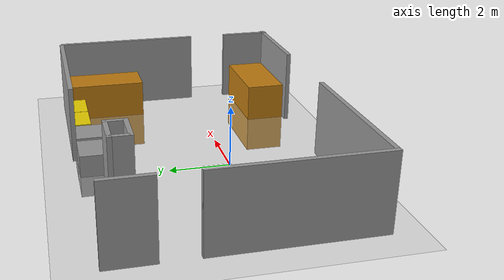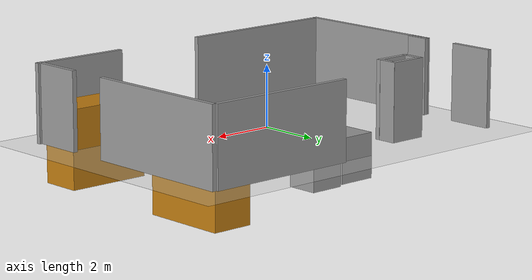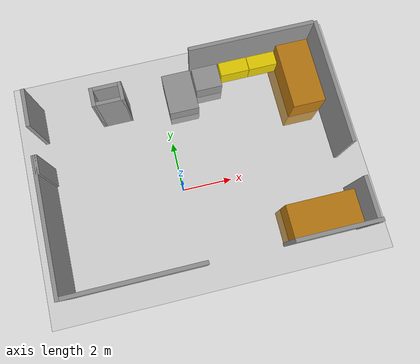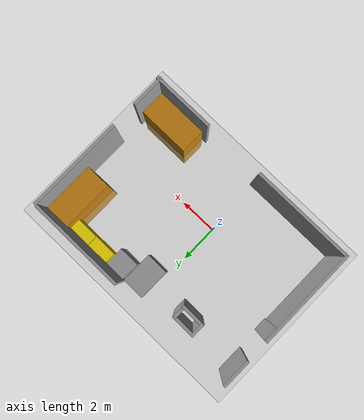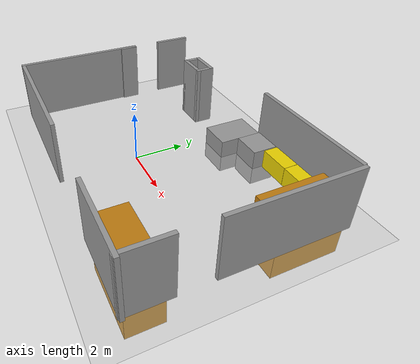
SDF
<sdf version='1.6'>
  <world name='default'>
    <scene>
      <ambient>0.4 0.4 0.4 1</ambient>
      <background>0.7 0.7 0.7 1</background>
      <shadows>1</shadows>
    </scene>
    <gravity>0 0 -9.8</gravity>
    <magnetic_field>6e-06 2.3e-05 -4.2e-05</magnetic_field>
    <atmosphere type='adiabatic'/>
    <physics name='default_physics' default='0' type='ode'>
      <max_step_size>0.001</max_step_size>
      <real_time_factor>1</real_time_factor>
      <real_time_update_rate>1000</real_time_update_rate>
    </physics>

    <gui fullscreen='0'>
      <camera name='user_camera'>
        <pose frame=''>9.7829 -4.73839 14.7825 0 0.905799 2.43206</pose>
        <view_controller>orbit</view_controller>
        <projection_type>perspective</projection_type>
      </camera>
    </gui>

    <include>
      <uri>model://ground_plane</uri>
    </include>
    <include>
      <uri>model://sun</uri>
    </include>

    <include>
      <uri>model://highbay</uri>
      <pose>0.73 0.88 0 0 -0 0</pose>
      <static>1</static>
    </include>

    <include>
        <uri>model://wall_table2</uri>
        <static>1</static>
        <name>wall_table2_1</name>
        <pose>4.42 4.5 0 0 -0 1.8e-05</pose>
    </include>

    <include>
        <uri>model://wall_table2</uri>
        <static>1</static>
        <name>wall_table2_2</name>
        <pose>3.21 4.5 0 0 -0 1.8e-05</pose>
    </include>

    <include>
        <uri>model://highbay_shelves</uri>
        <static>1</static>
        <pose>4.99 -2.33 0 0 -0 1.8e-05</pose>
        <name>highbay_shelves_1</name>
    </include>

    <include>
        <uri>model://highbay_shelves</uri>
        <static>1</static>
        <pose>5.7 3.41 0 0 -0 1.57</pose>
        <name>highbay_shelves_2</name>
    </include>

    <include>
        <uri>model://sand_blaster_and_brake</uri>
        <static>1</static>
        <pose>0.78 3.94 0 0 -0 0</pose>
    </include>

    <include>
        <uri>model://abb_control_box</uri>
        <static>1</static>
        <pose>2.0 4.29 0 0 -0 0</pose>
    </include>

  </world>
</sdf>

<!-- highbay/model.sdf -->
<sdf version='1.6'>
  <model name='highbay'>
    <pose frame=''>0.715354 -0.134951 0 0 -0 0</pose>
    <link name='Wall_13'>
      <collision name='Wall_13_Collision'>
        <geometry>
          <box>
            <size>1.25 0.15 2.5</size>
          </box>
        </geometry>
        <pose frame=''>0 0 1.25 0 -0 0</pose>
      </collision>
      <visual name='Wall_13_Visual'>
        <pose frame=''>0 0 1.25 0 -0 0</pose>
        <geometry>
          <box>
            <size>1.25 0.15 2.5</size>
          </box>
        </geometry>
        <material>
          <script>
            <uri>file://media/materials/scripts/gazebo.material</uri>
            <name>Gazebo/Grey</name>
          </script>
          <ambient>1 1 1 1</ambient>
          <diffuse>0.6 0.6 0.6 1</diffuse>
          <specular>0.01 0.01 0.01 1</specular>
          <emissive>0 0 0 1</emissive>
        </material>
        <meta>
          <layer>0</layer>
        </meta>
      </visual>
      <pose frame=''>-2.74868 3.22027 0 0 -0 3.14159</pose>
    </link>
    <link name='Wall_18'>
      <collision name='Wall_18_Collision'>
        <geometry>
          <box>
            <size>0.75 0.15 2.5</size>
          </box>
        </geometry>
        <pose frame=''>0 0 1.25 0 -0 0</pose>
      </collision>
      <visual name='Wall_18_Visual'>
        <pose frame=''>0 0 1.25 0 -0 0</pose>
        <geometry>
          <box>
            <size>0.75 0.15 2.5</size>
          </box>
        </geometry>
        <material>
          <script>
            <uri>file://media/materials/scripts/gazebo.material</uri>
            <name>Gazebo/Grey</name>
          </script>
          <ambient>1 1 1 1</ambient>
          <diffuse>0.6 0.6 0.6 1</diffuse>
          <specular>0.01 0.01 0.01 1</specular>
          <emissive>0 0 0 1</emissive>
        </material>
        <meta>
          <layer>0</layer>
        </meta>
      </visual>
      <pose frame=''>-3.29326 2.91908 0 0 -0 -1.5708</pose>
    </link>
    <link name='Wall_2'>
      <collision name='Wall_2_Collision'>
        <geometry>
          <box>
            <size>5.25 0.15 2.5</size>
          </box>
        </geometry>
        <pose frame=''>0 0 1.25 0 -0 0</pose>
      </collision>
      <visual name='Wall_2_Visual'>
        <pose frame=''>0 0 1.25 0 -0 0</pose>
        <geometry>
          <box>
            <size>5.25 0.15 2.5</size>
          </box>
        </geometry>
        <material>
          <script>
            <uri>file://media/materials/scripts/gazebo.material</uri>
            <name>Gazebo/Grey</name>
          </script>
          <ambient>1 1 1 1</ambient>
          <diffuse>0.6 0.6 0.6 1</diffuse>
          <specular>0.01 0.01 0.01 1</specular>
          <emissive>0 0 0 1</emissive>
        </material>
        <meta>
          <layer>0</layer>
        </meta>
      </visual>
      <pose frame=''>-3.10348 -3.95675 0 0 -0 0</pose>
    </link>
    <link name='Wall_20'>
      <collision name='Wall_20_Collision'>
        <geometry>
          <box>
            <size>1.25 0.15 2.5</size>
          </box>
        </geometry>
        <pose frame=''>0 0 1.25 0 -0 0</pose>
      </collision>
      <visual name='Wall_20_Visual'>
        <pose frame=''>0 0 1.25 0 -0 0</pose>
        <geometry>
          <box>
            <size>1.25 0.15 2.5</size>
          </box>
        </geometry>
        <material>
          <script>
            <uri>file://media/materials/scripts/gazebo.material</uri>
            <name>Gazebo/Grey</name>
          </script>
          <ambient>1 1 1 1</ambient>
          <diffuse>0.6 0.6 0.6 1</diffuse>
          <specular>0.01 0.01 0.01 1</specular>
          <emissive>0 0 0 1</emissive>
        </material>
        <meta>
          <layer>0</layer>
        </meta>
      </visual>
      <pose frame=''>-2.74326 2.61908 0 0 -0 0</pose>
    </link>
    <link name='Wall_22'>
      <collision name='Wall_22_Collision'>
        <geometry>
          <box>
            <size>0.75 0.15 2.5</size>
          </box>
        </geometry>
        <pose frame=''>0 0 1.25 0 -0 0</pose>
      </collision>
      <visual name='Wall_22_Visual'>
        <pose frame=''>0 0 1.25 0 -0 0</pose>
        <geometry>
          <box>
            <size>0.75 0.15 2.5</size>
          </box>
        </geometry>
        <material>
          <script>
            <uri>file://media/materials/scripts/gazebo.material</uri>
            <name>Gazebo/Grey</name>
          </script>
          <ambient>1 1 1 1</ambient>
          <diffuse>0.6 0.6 0.6 1</diffuse>
          <specular>0.01 0.01 0.01 1</specular>
          <emissive>0 0 0 1</emissive>
        </material>
        <meta>
          <layer>0</layer>
        </meta>
      </visual>
      <pose frame=''>-2.19761 2.91908 0 0 -0 -1.5708</pose>
    </link>
    <link name='Wall_24'>
      <collision name='Wall_24_Collision'>
        <geometry>
          <box>
            <size>3.25 0.15 2.5</size>
          </box>
        </geometry>
        <pose frame=''>0 0 1.25 0 -0 0</pose>
      </collision>
      <visual name='Wall_24_Visual'>
        <pose frame=''>0 0 1.25 0 -0 0</pose>
        <geometry>
          <box>
            <size>3.25 0.15 2.5</size>
          </box>
        </geometry>
        <material>
          <script>
            <uri>file://media/materials/scripts/gazebo.material</uri>
            <name>Gazebo/Grey</name>
          </script>
          <ambient>1 1 1 1</ambient>
          <diffuse>0.6 0.6 0.6 1</diffuse>
          <specular>0.01 0.01 0.01 1</specular>
          <emissive>0 0 0 1</emissive>
        </material>
        <meta>
          <layer>0</layer>
        </meta>
      </visual>
      <pose frame=''>4.25333 -3.95016 0 0 -0 0</pose>
    </link>
    <link name='Wall_26'>
      <collision name='Wall_26_Collision'>
        <geometry>
          <box>
            <size>1.75 0.15 2.5</size>
          </box>
        </geometry>
        <pose frame=''>0 0 1.25 0 -0 0</pose>
      </collision>
      <visual name='Wall_26_Visual'>
        <pose frame=''>0 0 1.25 0 -0 0</pose>
        <geometry>
          <box>
            <size>1.75 0.15 2.5</size>
          </box>
        </geometry>
        <material>
          <script>
            <uri>file://media/materials/scripts/gazebo.material</uri>
            <name>Gazebo/Grey</name>
          </script>
          <ambient>1 1 1 1</ambient>
          <diffuse>0.6 0.6 0.6 1</diffuse>
          <specular>0.01 0.01 0.01 1</specular>
          <emissive>0 0 0 1</emissive>
        </material>
        <meta>
          <layer>0</layer>
        </meta>
      </visual>
      <pose frame=''>5.72213 -3.17946 0 0 -0 1.5708</pose>
    </link>
    <link name='Wall_28'>
      <collision name='Wall_28_Collision'>
        <geometry>
          <box>
            <size>5 0.15 2.5</size>
          </box>
        </geometry>
        <pose frame=''>0 0 1.25 0 -0 0</pose>
      </collision>
      <visual name='Wall_28_Visual'>
        <pose frame=''>0 0 1.25 0 -0 0</pose>
        <geometry>
          <box>
            <size>5 0.15 2.5</size>
          </box>
        </geometry>
        <material>
          <script>
            <uri>file://media/materials/scripts/gazebo.material</uri>
            <name>Gazebo/Grey</name>
          </script>
          <ambient>1 1 1 1</ambient>
          <diffuse>0.6 0.6 0.6 1</diffuse>
          <specular>0.01 0.01 0.01 1</specular>
          <emissive>0 0 0 1</emissive>
        </material>
        <meta>
          <layer>0</layer>
        </meta>
      </visual>
      <pose frame=''>5.72499 1.4964 0 0 -0 -1.5708</pose>
    </link>
    <link name='Wall_30'>
      <collision name='Wall_30_Collision'>
        <geometry>
          <box>
            <size>5 0.15 2.5</size>
          </box>
        </geometry>
        <pose frame=''>0 0 1.25 0 -0 0</pose>
      </collision>
      <visual name='Wall_30_Visual'>
        <pose frame=''>0 0 1.25 0 -0 0</pose>
        <geometry>
          <box>
            <size>5 0.15 2.5</size>
          </box>
        </geometry>
        <material>
          <script>
            <uri>file://media/materials/scripts/gazebo.material</uri>
            <name>Gazebo/Grey</name>
          </script>
          <ambient>1 1 1 1</ambient>
          <diffuse>0.6 0.6 0.6 1</diffuse>
          <specular>0.01 0.01 0.01 1</specular>
          <emissive>0 0 0 1</emissive>
        </material>
        <meta>
          <layer>0</layer>
        </meta>
      </visual>
      <pose frame=''>3.15126 3.97946 0 0 -0 3.14159</pose>
    </link>
    <link name='Wall_33'>
      <collision name='Wall_33_Collision'>
        <geometry>
          <box>
            <size>0.75 0.15 2.5</size>
          </box>
        </geometry>
        <pose frame=''>0 0 1.25 0 -0 0</pose>
      </collision>
      <visual name='Wall_33_Visual'>
        <pose frame=''>0 0 1.25 0 -0 0</pose>
        <geometry>
          <box>
            <size>0.75 0.15 2.5</size>
          </box>
        </geometry>
        <material>
          <script>
            <uri>file://media/materials/scripts/gazebo.material</uri>
            <name>Gazebo/Grey</name>
          </script>
          <ambient>1 1 1 1</ambient>
          <diffuse>0.6 0.6 0.6 1</diffuse>
          <specular>0.01 0.01 0.01 1</specular>
          <emissive>0 0 0 1</emissive>
        </material>
        <meta>
          <layer>0</layer>
        </meta>
      </visual>
      <pose frame=''>-5.73491 0.84373 0 0 -0 -1.5708</pose>
    </link>
    <link name='Wall_4'>
      <collision name='Wall_4_Collision'>
        <geometry>
          <box>
            <size>5.25 0.15 2.5</size>
          </box>
        </geometry>
        <pose frame=''>0 0 1.25 0 -0 0</pose>
      </collision>
      <visual name='Wall_4_Visual'>
        <pose frame=''>0 0 1.25 0 -0 0</pose>
        <geometry>
          <box>
            <size>5.25 0.15 2.5</size>
          </box>
        </geometry>
        <material>
          <script>
            <uri>file://media/materials/scripts/gazebo.material</uri>
            <name>Gazebo/Grey</name>
          </script>
          <ambient>1 1 1 1</ambient>
          <diffuse>0.6 0.6 0.6 1</diffuse>
          <specular>0.01 0.01 0.01 1</specular>
          <emissive>0 0 0 1</emissive>
        </material>
        <meta>
          <layer>0</layer>
        </meta>
      </visual>
      <pose frame=''>-5.80333 -1.40664 0 0 -0 -1.5708</pose>
    </link>
    <link name='Wall_6'>
      <collision name='Wall_6_Collision'>
        <geometry>
          <box>
            <size>1.5 0.15 2.5</size>
          </box>
        </geometry>
        <pose frame=''>0 0 1.25 0 -0 0</pose>
      </collision>
      <visual name='Wall_6_Visual'>
        <pose frame=''>0 0 1.25 0 -0 0</pose>
        <geometry>
          <box>
            <size>1.5 0.15 2.5</size>
          </box>
        </geometry>
        <material>
          <script>
            <uri>file://media/materials/scripts/gazebo.material</uri>
            <name>Gazebo/Grey</name>
          </script>
          <ambient>1 1 1 1</ambient>
          <diffuse>0.6 0.6 0.6 1</diffuse>
          <specular>0.01 0.01 0.01 1</specular>
          <emissive>0 0 0 1</emissive>
        </material>
        <meta>
          <layer>0</layer>
        </meta>
      </visual>
      <pose frame=''>-5.79524 3.09998 0 0 -0 -1.5708</pose>
    </link>
    <static>1</static>
  </model>
</sdf>

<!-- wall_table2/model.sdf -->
<sdf version='1.7'>
  <model name='wall_table2'>
    <link name='link'>
      <inertial>
        <mass>15</mass>
        <inertia>
          <ixx>15.166667</ixx>
          <ixy>0</ixy>
          <ixz>0</ixz>
          <iyy>15.166667</iyy>
          <iyz>0</iyz>
          <izz>15.166667</izz>
        </inertia>
        <pose>0 0 0.385 0 -0 0</pose>
      </inertial>
      <self_collide>0</self_collide>
      <enable_wind>0</enable_wind>
      <kinematic>0</kinematic>
      <pose>0 0 0 0 -0 0</pose>
      <gravity>1</gravity>
      <visual name='visual'>
        <geometry>
          <box>
            <size>1.2 0.6 0.75</size>
          </box>
        </geometry>
        <material>
          <script>
            <name>Gazebo/Grey</name>
            <uri>file://media/materials/scripts/gazebo.material</uri>
          </script>
          <shader type='pixel'>
            <normal_map>__default__</normal_map>
          </shader>
          <ambient>0.929 0.831 0 1</ambient>
          <diffuse>0.929 0.831 0 1</diffuse>
          <specular>0.01 0.01 0.01 1</specular>
          <emissive>0 0 0 1</emissive>
        </material>
        <pose>0 0 0.385 0 -0 0</pose>
        <transparency>0</transparency>
        <cast_shadows>1</cast_shadows>
      </visual>
      <collision name='collision'>
        <laser_retro>0</laser_retro>
        <max_contacts>10</max_contacts>
        <pose>0 0 0.385 0 -0 0</pose>
        <geometry>
          <box>
            <size>1.2 0.6 0.75</size>
          </box>
        </geometry>
        <surface>
          <friction>
            <ode>
              <mu>100</mu>
              <mu2>50</mu2>
              <fdir1>0 0 0</fdir1>
              <slip1>0</slip1>
              <slip2>0</slip2>
            </ode>
            <torsional>
              <coefficient>1</coefficient>
              <patch_radius>0</patch_radius>
              <surface_radius>0</surface_radius>
              <use_patch_radius>1</use_patch_radius>
              <ode>
                <slip>0</slip>
              </ode>
            </torsional>
          </friction>
          <bounce>
            <restitution_coefficient>0</restitution_coefficient>
            <threshold>1e+06</threshold>
          </bounce>
          <contact>
            <collide_without_contact>0</collide_without_contact>
            <collide_without_contact_bitmask>1</collide_without_contact_bitmask>
            <collide_bitmask>1</collide_bitmask>
            <ode>
              <soft_cfm>0</soft_cfm>
              <soft_erp>0.2</soft_erp>
              <kp>1e+13</kp>
              <kd>1</kd>
              <max_vel>0.01</max_vel>
              <min_depth>0</min_depth>
            </ode>
            <bullet>
              <split_impulse>1</split_impulse>
              <split_impulse_penetration_threshold>-0.01</split_impulse_penetration_threshold>
              <soft_cfm>0</soft_cfm>
              <soft_erp>0.2</soft_erp>
              <kp>1e+13</kp>
              <kd>1</kd>
            </bullet>
          </contact>
        </surface>
      </collision>
    </link>
    <static>0</static>
    <allow_auto_disable>1</allow_auto_disable>
  </model>
</sdf>

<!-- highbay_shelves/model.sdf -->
<sdf version='1.7'>
  <model name='highbay_shelves'>
    <link name='link'>
      <inertial>
        <mass>1000</mass>
        <inertia>
          <ixx>1101.166667</ixx>
          <ixy>0</ixy>
          <ixz>0</ixz>
          <iyy>1110.166667</iyy>
          <iyz>0</iyz>
          <izz>1110.166667</izz>
        </inertia>
        <pose>0 0 0 0 -0 0</pose>
      </inertial>
      <self_collide>0</self_collide>
      <enable_wind>0</enable_wind>
      <kinematic>0</kinematic>
      <pose>0 0 0 0 -0 0</pose>
      <gravity>1</gravity>
      <visual name='visual'>
        <geometry>
          <box>
            <size>2.74 1.32 2.5</size>
          </box>
        </geometry>
        <material>
          <script>
            <name>Gazebo/Grey</name>
            <uri>file://media/materials/scripts/gazebo.material</uri>
          </script>
          <shader type='pixel'>
            <normal_map>__default__</normal_map>
          </shader>
          <ambient>0.757 0.49 0.067 1</ambient>
          <diffuse>0.757 0.49 0.067 1</diffuse>
          <specular>0.01 0.01 0.01 1</specular>
          <emissive>0 0 0 1</emissive>
        </material>
        <pose>0 0 0 0 -0 0</pose>
        <transparency>0</transparency>
        <cast_shadows>1</cast_shadows>
      </visual>
      <collision name='collision'>
        <laser_retro>0</laser_retro>
        <max_contacts>10</max_contacts>
        <pose>0 0 0 0 -0 0</pose>
        <geometry>
          <box>
            <size>2.74 1.32 2.5</size>
          </box>
        </geometry>
        <surface>
          <friction>
            <ode>
              <mu>1</mu>
              <mu2>1</mu2>
              <fdir1>0 0 0</fdir1>
              <slip1>0</slip1>
              <slip2>0</slip2>
            </ode>
            <torsional>
              <coefficient>1</coefficient>
              <patch_radius>0</patch_radius>
              <surface_radius>0</surface_radius>
              <use_patch_radius>1</use_patch_radius>
              <ode>
                <slip>0</slip>
              </ode>
            </torsional>
          </friction>
          <bounce>
            <restitution_coefficient>0</restitution_coefficient>
            <threshold>1e+06</threshold>
          </bounce>
          <contact>
            <collide_without_contact>0</collide_without_contact>
            <collide_without_contact_bitmask>1</collide_without_contact_bitmask>
            <collide_bitmask>1</collide_bitmask>
            <ode>
              <soft_cfm>0</soft_cfm>
              <soft_erp>0.2</soft_erp>
              <kp>1e+13</kp>
              <kd>1</kd>
              <max_vel>0.01</max_vel>
              <min_depth>0</min_depth>
            </ode>
            <bullet>
              <split_impulse>1</split_impulse>
              <split_impulse_penetration_threshold>-0.01</split_impulse_penetration_threshold>
              <soft_cfm>0</soft_cfm>
              <soft_erp>0.2</soft_erp>
              <kp>1e+13</kp>
              <kd>1</kd>
            </bullet>
          </contact>
        </surface>
      </collision>
    </link>
    <static>0</static>
    <allow_auto_disable>1</allow_auto_disable>
  </model>
</sdf>

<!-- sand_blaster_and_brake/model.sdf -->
<sdf version='1.7'>
  <model name='sand_blaster_and_brake'>
    <link name='link'>
      <inertial>
        <mass>100</mass>
        <inertia>
          <ixx>110.166667</ixx>
          <ixy>0</ixy>
          <ixz>0</ixz>
          <iyy>110.166667</iyy>
          <iyz>0</iyz>
          <izz>110.166667</izz>
        </inertia>
        <pose>0 0 0 0 -0 0</pose>
      </inertial>
      <self_collide>0</self_collide>
      <enable_wind>0</enable_wind>
      <kinematic>0</kinematic>
      <pose>0 0 0 0 -0 0</pose>
      <gravity>1</gravity>
      <visual name='visual'>
        <geometry>
          <box>
            <size>1.22 1.7 1.4</size>
          </box>
        </geometry>
        <material>
          <script>
            <name>Gazebo/Grey</name>
            <uri>file://media/materials/scripts/gazebo.material</uri>
          </script>
          <shader type='pixel'>
            <normal_map>__default__</normal_map>
          </shader>
          <ambient>0.3 0.3 0.3 1</ambient>
          <diffuse>0.7 0.7 0.7 1</diffuse>
          <specular>0.01 0.01 0.01 1</specular>
          <emissive>0 0 0 1</emissive>
        </material>
        <pose>0 0 0 0 -0 0</pose>
        <transparency>0</transparency>
        <cast_shadows>1</cast_shadows>
      </visual>
      <collision name='collision'>
        <laser_retro>0</laser_retro>
        <max_contacts>10</max_contacts>
        <pose>0 0 0 0 -0 0</pose>
        <geometry>
          <box>
            <size>1.22 1.7 1.4</size>
          </box>
        </geometry>
        <surface>
          <friction>
            <ode>
              <mu>1</mu>
              <mu2>1</mu2>
              <fdir1>0 0 0</fdir1>
              <slip1>0</slip1>
              <slip2>0</slip2>
            </ode>
            <torsional>
              <coefficient>1</coefficient>
              <patch_radius>0</patch_radius>
              <surface_radius>0</surface_radius>
              <use_patch_radius>1</use_patch_radius>
              <ode>
                <slip>0</slip>
              </ode>
            </torsional>
          </friction>
          <bounce>
            <restitution_coefficient>0</restitution_coefficient>
            <threshold>1e+06</threshold>
          </bounce>
          <contact>
            <collide_without_contact>0</collide_without_contact>
            <collide_without_contact_bitmask>1</collide_without_contact_bitmask>
            <collide_bitmask>1</collide_bitmask>
            <ode>
              <soft_cfm>0</soft_cfm>
              <soft_erp>0.2</soft_erp>
              <kp>1e+13</kp>
              <kd>1</kd>
              <max_vel>0.01</max_vel>
              <min_depth>0</min_depth>
            </ode>
            <bullet>
              <split_impulse>1</split_impulse>
              <split_impulse_penetration_threshold>-0.01</split_impulse_penetration_threshold>
              <soft_cfm>0</soft_cfm>
              <soft_erp>0.2</soft_erp>
              <kp>1e+13</kp>
              <kd>1</kd>
            </bullet>
          </contact>
        </surface>
      </collision>
    </link>
    <static>0</static>
    <allow_auto_disable>1</allow_auto_disable>
  </model>
</sdf>

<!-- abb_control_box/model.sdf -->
<sdf version='1.7'>
  <model name='abb_control_box'>
    <link name='link'>
      <inertial>
        <mass>200</mass>
        <inertia>
          <ixx>70.166667</ixx>
          <ixy>0</ixy>
          <ixz>0</ixz>
          <iyy>70.166667</iyy>
          <iyz>0</iyz>
          <izz>70.166667</izz>
        </inertia>
        <pose>0 0 0 0 -0 0</pose>
      </inertial>
      <self_collide>0</self_collide>
      <enable_wind>0</enable_wind>
      <kinematic>0</kinematic>
      <pose>0 0 0 0 -0 0</pose>
      <gravity>1</gravity>
      <visual name='visual'>
        <geometry>
          <box>
            <size>1.1 1. 1.5</size>
          </box>
        </geometry>
        <material>
          <script>
            <name>Gazebo/Grey</name>
            <uri>file://media/materials/scripts/gazebo.material</uri>
          </script>
          <shader type='pixel'>
            <normal_map>__default__</normal_map>
          </shader>
          <ambient>0.827 0.843 0.812 1</ambient>
          <diffuse>0.729 0.741 0.714 1</diffuse>
          <specular>0.01 0.01 0.01 1</specular>
          <emissive>0 0 0 1</emissive>
        </material>
        <pose>0 0 0 0 -0 0</pose>
        <transparency>0</transparency>
        <cast_shadows>1</cast_shadows>
      </visual>
      <collision name='collision'>
        <laser_retro>0</laser_retro>
        <max_contacts>10</max_contacts>
        <pose>0 0 0 0 -0 0</pose>
        <geometry>
          <box>
            <size>1.1 1. 1.5</size>
          </box>
        </geometry>
        <surface>
          <friction>
            <ode>
              <mu>1</mu>
              <mu2>1</mu2>
              <fdir1>0 0 0</fdir1>
              <slip1>0</slip1>
              <slip2>0</slip2>
            </ode>
            <torsional>
              <coefficient>1</coefficient>
              <patch_radius>0</patch_radius>
              <surface_radius>0</surface_radius>
              <use_patch_radius>1</use_patch_radius>
              <ode>
                <slip>0</slip>
              </ode>
            </torsional>
          </friction>
          <bounce>
            <restitution_coefficient>0</restitution_coefficient>
            <threshold>1e+06</threshold>
          </bounce>
          <contact>
            <collide_without_contact>0</collide_without_contact>
            <collide_without_contact_bitmask>1</collide_without_contact_bitmask>
            <collide_bitmask>1</collide_bitmask>
            <ode>
              <soft_cfm>0</soft_cfm>
              <soft_erp>0.2</soft_erp>
              <kp>1e+13</kp>
              <kd>1</kd>
              <max_vel>0.01</max_vel>
              <min_depth>0</min_depth>
            </ode>
            <bullet>
              <split_impulse>1</split_impulse>
              <split_impulse_penetration_threshold>-0.01</split_impulse_penetration_threshold>
              <soft_cfm>0</soft_cfm>
              <soft_erp>0.2</soft_erp>
              <kp>1e+13</kp>
              <kd>1</kd>
            </bullet>
          </contact>
        </surface>
      </collision>
    </link>
    <static>0</static>
    <allow_auto_disable>1</allow_auto_disable>
  </model>
</sdf>
